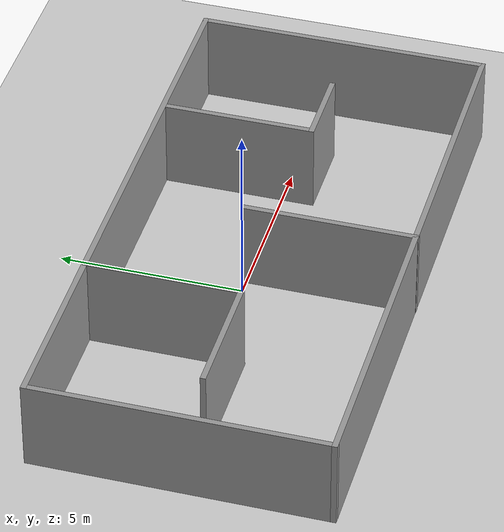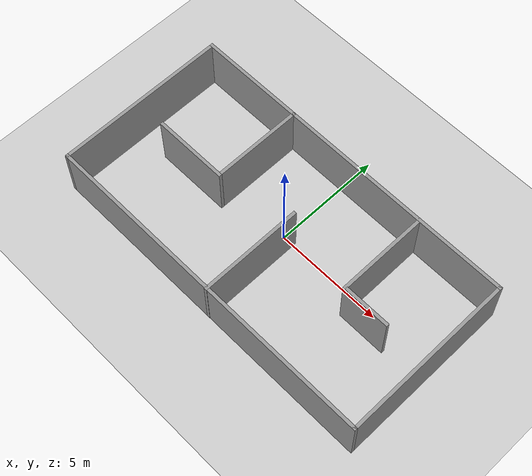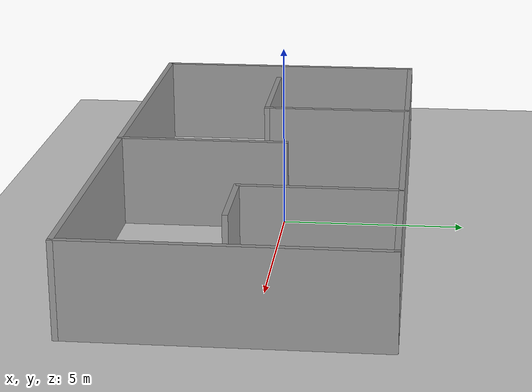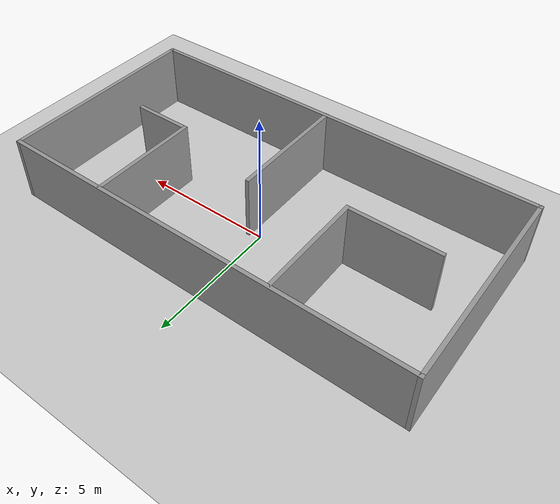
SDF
<sdf version="1.7">
 <world name="default">
  <light name="sun" type="directional">
   <pose>0 0 10 0 -0 0</pose>
   <diffuse>0.8 0.8 0.8 1</diffuse>
   <specular>0.2 0.2 0.2 1</specular>
   <attenuation>
    <range>1000</range>
    <constant>0.9</constant>
    <linear>0.01</linear>
    <quadratic>0.001</quadratic>
   </attenuation>
   <direction>-0.5 0.1 -0.9</direction>
   <spot><inner_angle>0</inner_angle><outer_angle>0</outer_angle><falloff>0</falloff></spot>
  </light>
  <model name="ground_plane">
   <static>1</static>
   <link name="link">
    <collision name="collision">
     <geometry><plane><normal>0 0 1</normal><size>100 100</size></plane></geometry>
     <surface>
      <contact><collide_bitmask>65535</collide_bitmask></contact>
      <friction><ode><mu>100</mu><mu2>50</mu2></ode></friction>
     </surface>
    </collision>
    <visual name="visual">
     <cast_shadows>0</cast_shadows>
     <geometry><plane><normal>0 0 1</normal><size>100 100</size></plane></geometry>
     <material>
      <script><uri>file://media/materials/scripts/gazebo.material</uri><name>Gazebo/Grey</name></script>
     </material>
    </visual>
   </link>
  </model>
  <gravity>0 0 -9.8</gravity>
  <magnetic_field>6e-06 2.3e-05 -4.2e-05</magnetic_field>
  <atmosphere type="adiabatic"/>
  <physics type="ode">
   <max_step_size>0.001</max_step_size>
   <real_time_factor>1</real_time_factor>
   <real_time_update_rate>1000</real_time_update_rate>
  </physics>
  <scene><ambient>0.4 0.4 0.4 1</ambient><background>0.7 0.7 0.7 1</background><shadows>1</shadows></scene>
  <spherical_coordinates>
   <surface_model>EARTH_WGS84</surface_model>
   <latitude_deg>0</latitude_deg>
   <longitude_deg>0</longitude_deg>
   <elevation>0</elevation>
   <heading_deg>0</heading_deg>
  </spherical_coordinates>
  <model name="room">
   <pose>0.190281 0.411323 0 0 -0 0</pose>
   <link name="Wall_40">
    <collision name="Wall_40_Collision">
     <geometry><box><size>16 0.15 2.5</size></box></geometry>
     <pose>0 0 1.25 0 -0 0</pose>
    </collision>
    <visual name="Wall_40_Visual">
     <pose>0 0 1.25 0 -0 0</pose>
     <geometry><box><size>16 0.15 2.5</size></box></geometry>
     <material>
      <script><uri>file://media/materials/scripts/gazebo.material</uri><name>Gazebo/Grey</name></script>
      <ambient>1 1 1 1</ambient>
     </material>
     <meta><layer>0</layer></meta>
    </visual>
    <pose>-0 2.92851 0 0 -0 0</pose>
   </link>
   <link name="Wall_41">
    <collision name="Wall_41_Collision">
     <geometry><box><size>8 0.15 2.5</size></box></geometry>
     <pose>0 0 1.25 0 -0 0</pose>
    </collision>
    <visual name="Wall_41_Visual">
     <pose>0 0 1.25 0 -0 0</pose>
     <geometry><box><size>8 0.15 2.5</size></box></geometry>
     <material>
      <script><uri>file://media/materials/scripts/gazebo.material</uri><name>Gazebo/Grey</name></script>
      <ambient>1 1 1 1</ambient>
     </material>
     <meta><layer>0</layer></meta>
    </visual>
    <pose>7.925 -0.996486 0 0 -0 -1.5708</pose>
   </link>
   <link name="Wall_42">
    <collision name="Wall_42_Collision">
     <geometry><box><size>16 0.15 2.5</size></box></geometry>
     <pose>0 0 1.25 0 -0 0</pose>
    </collision>
    <visual name="Wall_42_Visual">
     <pose>0 0 1.25 0 -0 0</pose>
     <geometry><box><size>16 0.15 2.5</size></box></geometry>
     <material>
      <script><uri>file://media/materials/scripts/gazebo.material</uri><name>Gazebo/Grey</name></script>
      <ambient>1 1 1 1</ambient>
     </material>
     <meta><layer>0</layer></meta>
    </visual>
    <pose>-0 -4.92149 0 0 -0 3.14159</pose>
   </link>
   <link name="Wall_43">
    <collision name="Wall_43_Collision">
     <geometry><box><size>8 0.15 2.5</size></box></geometry>
     <pose>0 0 1.25 0 -0 0</pose>
    </collision>
    <visual name="Wall_43_Visual">
     <pose>0 0 1.25 0 -0 0</pose>
     <geometry><box><size>8 0.15 2.5</size></box></geometry>
     <material>
      <script><uri>file://media/materials/scripts/gazebo.material</uri><name>Gazebo/Grey</name></script>
      <ambient>1 1 1 1</ambient>
     </material>
     <meta><layer>0</layer></meta>
    </visual>
    <pose>-7.925 -0.996486 0 0 -0 1.5708</pose>
   </link>
   <link name="Wall_45">
    <collision name="Wall_45_Collision">
     <geometry><box><size>4.25 0.15 2.5</size></box></geometry>
     <pose>0 0 1.25 0 -0 0</pose>
    </collision>
    <visual name="Wall_45_Visual">
     <pose>0 0 1.25 0 -0 0</pose>
     <geometry><box><size>4.25 0.15 2.5</size></box></geometry>
     <material>
      <script><uri>file://media/materials/scripts/gazebo.material</uri><name>Gazebo/Grey</name></script>
      <ambient>1 1 1 1</ambient>
     </material>
     <meta><layer>0</layer></meta>
    </visual>
    <pose>-3.0589 0.852492 0 0 -0 -1.5708</pose>
   </link>
   <link name="Wall_46">
    <collision name="Wall_46_Collision">
     <geometry><box><size>3.5 0.15 2.5</size></box></geometry>
     <pose>0 0 1.25 0 -0 0</pose>
    </collision>
    <visual name="Wall_46_Visual">
     <pose>0 0 1.25 0 -0 0</pose>
     <geometry><box><size>3.5 0.15 2.5</size></box></geometry>
     <material>
      <script><uri>file://media/materials/scripts/gazebo.material</uri><name>Gazebo/Grey</name></script>
      <ambient>1 1 1 1</ambient>
     </material>
     <meta><layer>0</layer></meta>
    </visual>
    <pose>-4.7339 -1.19751 0 0 -0 3.14159</pose>
   </link>
   <link name="Wall_48">
    <collision name="Wall_48_Collision">
     <geometry><box><size>4.25 0.15 2.5</size></box></geometry>
     <pose>0 0 1.25 0 -0 0</pose>
    </collision>
    <visual name="Wall_48_Visual">
     <pose>0 0 1.25 0 -0 0</pose>
     <geometry><box><size>4.25 0.15 2.5</size></box></geometry>
     <material>
      <script><uri>file://media/materials/scripts/gazebo.material</uri><name>Gazebo/Grey</name></script>
      <ambient>1 1 1 1</ambient>
     </material>
     <meta><layer>0</layer></meta>
    </visual>
    <pose>3.86294 0.852492 0 0 -0 -1.5708</pose>
   </link>
   <link name="Wall_49">
    <collision name="Wall_49_Collision">
     <geometry><box><size>2.25 0.15 2.5</size></box></geometry>
     <pose>0 0 1.25 0 -0 0</pose>
    </collision>
    <visual name="Wall_49_Visual">
     <pose>0 0 1.25 0 -0 0</pose>
     <geometry><box><size>2.25 0.15 2.5</size></box></geometry>
     <material>
      <script><uri>file://media/materials/scripts/gazebo.material</uri><name>Gazebo/Grey</name></script>
      <ambient>1 1 1 1</ambient>
     </material>
     <meta><layer>0</layer></meta>
    </visual>
    <pose>4.91294 -1.19751 0 0 -0 0</pose>
   </link>
   <link name="Wall_51">
    <collision name="Wall_51_Collision">
     <geometry><box><size>4.75 0.15 2.5</size></box></geometry>
     <pose>0 0 1.25 0 -0 0</pose>
    </collision>
    <visual name="Wall_51_Visual">
     <pose>0 0 1.25 0 -0 0</pose>
     <geometry><box><size>4.75 0.15 2.5</size></box></geometry>
     <material>
      <script><uri>file://media/materials/scripts/gazebo.material</uri><name>Gazebo/Grey</name></script>
      <ambient>1 1 1 1</ambient>
     </material>
     <meta><layer>0</layer></meta>
    </visual>
    <pose>0.245887 -2.63011 0 0 -0 1.5708</pose>
   </link>
   <static>1</static>
  </model>
 </world>
</sdf>
